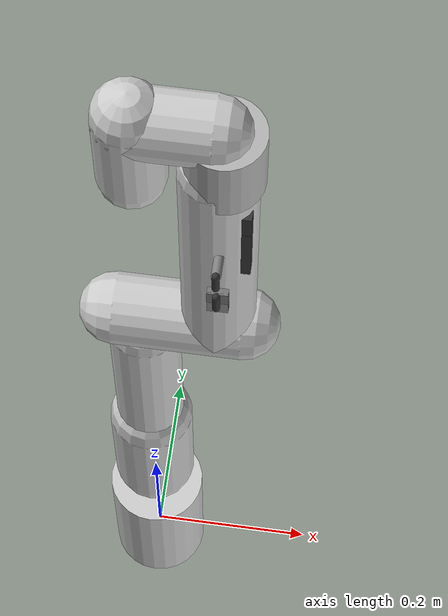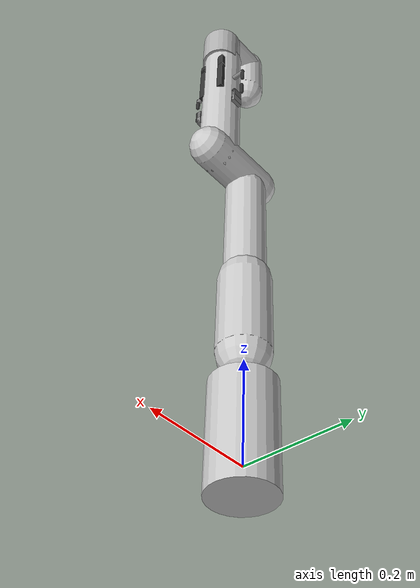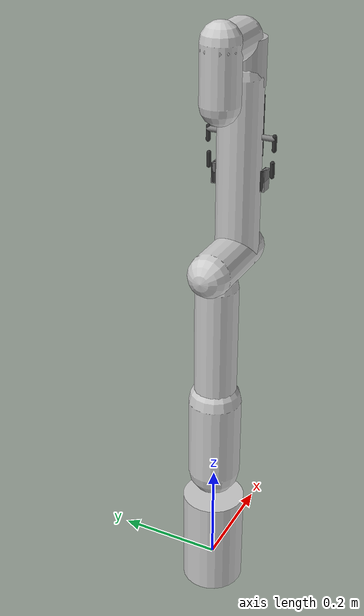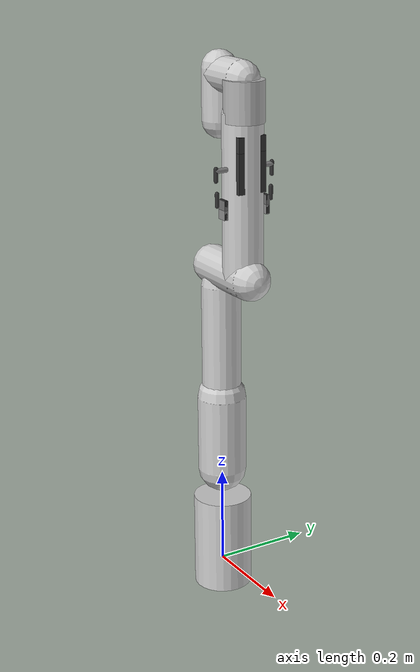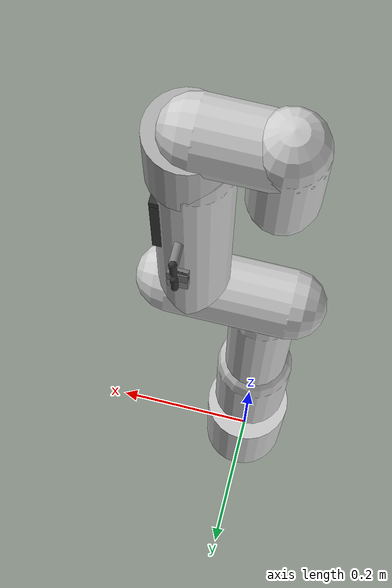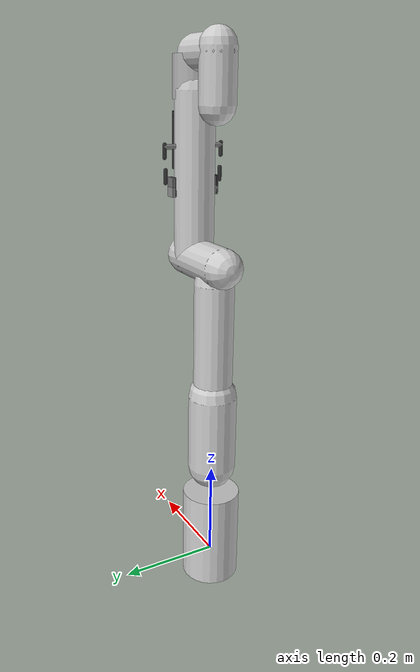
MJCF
<mujoco model="panda_2f85_nomesh">
  <compiler angle="radian" autolimits="true"/>

  <option integrator="implicitfast" cone="elliptic" impratio="10"/>

  <default>
    <default class="panda">
      <joint armature="0.1" damping="1" axis="0 0 1" range="-2.8973 2.8973"/>
      <general dyntype="none" biastype="affine" ctrlrange="-2.8973 2.8973" forcerange="-87 87"/>
    </default>
    <default class="2f85">
      <general biastype="affine"/>
      <joint axis="1 0 0"/>
      <default class="driver">
        <joint range="0 0.8" armature="0.005" damping="0.1" solimplimit="0.95 0.99 0.001" solreflimit="0.005 1"/>
      </default>
      <default class="follower">
        <joint range="-0.872664 0.872664" armature="0.001" pos="0 -0.018 0.0065" solimplimit="0.95 0.99 0.001" solreflimit="0.005 1"/>
      </default>
      <default class="spring_link">
        <joint range="-0.29670597283 0.8" armature="0.001" stiffness="0.05" springref="2.62" damping="0.00125"/>
      </default>
      <default class="coupler">
        <joint range="-1.57 0" armature="0.001" solimplimit="0.95 0.99 0.001" solreflimit="0.005 1"/>
      </default>
      <default class="pad_box1">
        <geom mass="0" type="box" pos="0 -0.0026 0.028125" size="0.011 0.004 0.009375" friction="0.7"
          solimp="0.95 0.99 0.001" solref="0.004 1" priority="1" rgba="0.55 0.55 0.55 1"/>
      </default>
      <default class="pad_box2">
        <geom mass="0" type="box" pos="0 -0.0026 0.009375" size="0.011 0.004 0.009375" friction="0.6"
          solimp="0.95 0.99 0.001" solref="0.004 1" priority="1" rgba="0.45 0.45 0.45 1"/>
      </default>
    </default>
  </default>

  <worldbody>
    <light name="top" pos="0 0 2" mode="trackcom"/>
    <body name="link0" childclass="panda">
      <inertial mass="0.629769" pos="-0.041018 -0.00014 0.049974"
        fullinertia="0.00315 0.00388 0.004285 8.2904e-7 0.00015 8.2299e-6"/>
      <geom type="cylinder" size="0.06 0.1" pos="0 0 0.05" rgba="0.8 0.8 0.8 1"/>
      <body name="link1" pos="0 0 0.333">
        <inertial mass="4.970684" pos="0.003875 0.002081 -0.04762"
          fullinertia="0.70337 0.70661 0.0091170 -0.00013900 0.0067720 0.019169"/>
        <joint name="joint1"/>
        <geom type="capsule" size="0.05 0.08" pos="0 0 -0.04" rgba="0.8 0.8 0.8 1"/>
        <body name="link2" quat="1 -1 0 0">
          <inertial mass="0.646926" pos="-0.003141 -0.02872 0.003495"
            fullinertia="0.0079620 2.8110e-2 2.5995e-2 -3.925e-3 1.0254e-2 7.04e-4"/>
          <joint name="joint2" range="-1.7628 1.7628"/>
          <geom type="capsule" size="0.04 0.14" pos="0 -0.14 0" quat="1 1 0 0" rgba="0.8 0.8 0.8 1"/>
          <body name="link3" pos="0 -0.316 0" quat="1 1 0 0">
            <joint name="joint3"/>
            <inertial mass="3.228604" pos="2.7518e-2 3.9252e-2 -6.6502e-2"
              fullinertia="3.7242e-2 3.6155e-2 1.083e-2 -4.761e-3 -1.1396e-2 -1.2805e-2"/>
            <geom type="capsule" size="0.04 0.07" pos="0.04 0 0" quat="1 0 1 0" rgba="0.8 0.8 0.8 1"/>
            <body name="link4" pos="0.0825 0 0" quat="1 1 0 0">
              <inertial mass="3.587895" pos="-5.317e-2 1.04419e-1 2.7454e-2"
                fullinertia="2.5853e-2 1.9552e-2 2.8323e-2 7.796e-3 -1.332e-3 8.641e-3"/>
              <joint name="joint4" range="-3.0718 -0.0698"/>
              <geom type="capsule" size="0.04 0.16" pos="0 0.16 0" quat="1 1 0 0" rgba="0.8 0.8 0.8 1"/>
              <body name="link5" pos="-0.0825 0.384 0" quat="1 -1 0 0">
                <inertial mass="1.225946" pos="-1.1953e-2 4.1065e-2 -3.8437e-2"
                  fullinertia="3.5549e-2 2.9474e-2 8.627e-3 -2.117e-3 -4.037e-3 2.29e-4"/>
                <joint name="joint5"/>
                <geom type="capsule" size="0.035 0.05" pos="0 0 -0.04" rgba="0.8 0.8 0.8 1"/>
                <body name="link6" quat="1 1 0 0">
                  <inertial mass="1.666555" pos="6.0149e-2 -1.4117e-2 -1.0517e-2"
                    fullinertia="1.964e-3 4.354e-3 5.433e-3 1.09e-4 -1.158e-3 3.41e-4"/>
                  <joint name="joint6" range="-0.0175 3.7525"/>
                  <geom type="capsule" size="0.035 0.04" pos="0.04 0 0" quat="1 0 1 0" rgba="0.8 0.8 0.8 1"/>
                  <body name="link7" pos="0.088 0 0" quat="1 1 0 0">
                    <inertial mass="7.35522e-01" pos="1.0517e-2 -4.252e-3 6.1597e-2"
                      fullinertia="1.2516e-2 1.0027e-2 4.815e-3 -4.28e-4 -1.196e-3 -7.41e-4"/>
                    <joint name="joint7"/>
                    <geom type="cylinder" size="0.04 0.04" pos="0 0 0.04" rgba="0.7 0.7 0.7 1"/>
                    <!-- Robotiq 2F-85 -->
                    <body name="base_mount" pos="0 0 0.107" childclass="2f85">
                      <geom type="box" size="0.03 0.03 0.015" pos="0 0 0.01" rgba="0.2 0.2 0.2 1"/>
                      <body name="base" pos="0 0 0.0038" quat="0 0 0 1">
                        <inertial mass="0.777441" pos="0 -2.70394e-05 0.0354675" quat="1 -0.00152849 0 0"
                          diaginertia="0.000260285 0.000225381 0.000152708"/>
                        <geom type="box" size="0.03 0.03 0.05" pos="0 0 0.05" rgba="0.2 0.2 0.2 1"/>
                        <body name="gripper_center" pos="0 0 0.145">
                          <site name="pinch" pos="0 0 0" type="sphere" group="5" rgba="0.9 0.9 0.9 1" size="0.005"/>
                        </body>
                        <!-- Right 4-bar linkage -->
                        <body name="right_driver" pos="0 0.0306011 0.054904">
                          <inertial mass="0.00899563" pos="2.96931e-12 0.0177547 0.00107314" quat="0.681301 0.732003 0 0"
                            diaginertia="1.72352e-06 1.60906e-06 3.22006e-07"/>
                          <joint name="right_driver_joint" class="driver"/>
                          <geom type="capsule" size="0.005 0.015" pos="0 0.015 0" quat="1 1 0 0" rgba="0.5 0.5 0.5 1"/>
                          <body name="right_coupler" pos="0 0.0315 -0.0041">
                            <inertial mass="0.0140974" pos="0 0.00301209 0.0232175" quat="0.705636 -0.0455904 0.0455904 0.705636"
                              diaginertia="4.16206e-06 3.52216e-06 8.88131e-07"/>
                            <joint name="right_coupler_joint" class="coupler"/>
                            <geom type="capsule" size="0.004 0.012" pos="0 0 0.012" rgba="0.2 0.2 0.2 1"/>
                          </body>
                        </body>
                        <body name="right_spring_link" pos="0 0.0132 0.0609">
                          <inertial mass="0.0221642" pos="-8.65005e-09 0.0181624 0.0212658" quat="0.663403 -0.244737 0.244737 0.663403"
                            diaginertia="8.96853e-06 6.71733e-06 2.63931e-06"/>
                          <joint name="right_spring_link_joint" class="spring_link"/>
                          <geom type="capsule" size="0.004 0.02" pos="0 0.018 0.02" rgba="0.2 0.2 0.2 1"/>
                          <body name="right_follower" pos="0 0.055 0.0375">
                            <inertial mass="0.0125222" pos="0 -0.011046 0.0124786" quat="1 0.1664 0 0"
                              diaginertia="2.67415e-06 2.4559e-06 6.02031e-07"/>
                            <joint name="right_follower_joint" class="follower"/>
                            <geom type="capsule" size="0.004 0.012" pos="0 -0.008 0.012" rgba="0.2 0.2 0.2 1"/>
                            <body name="right_pad" pos="0 -0.0189 0.01352">
                              <geom class="pad_box1" name="right_pad1"/>
                              <geom class="pad_box2" name="right_pad2"/>
                              <inertial mass="0.0035" pos="0 -0.0025 0.0185" quat="0.707107 0 0 0.707107"
                                diaginertia="4.73958e-07 3.64583e-07 1.23958e-07"/>
                              <body name="right_silicone_pad">
                                <geom type="box" size="0.011 0.003 0.018" pos="0 -0.003 0.018" rgba="0.2 0.2 0.2 1"/>
                              </body>
                            </body>
                          </body>
                        </body>
                        <!-- Left 4-bar linkage -->
                        <body name="left_driver" pos="0 -0.0306011 0.054904" quat="0 0 0 1">
                          <inertial mass="0.00899563" pos="0 0.0177547 0.00107314" quat="0.681301 0.732003 0 0"
                            diaginertia="1.72352e-06 1.60906e-06 3.22006e-07"/>
                          <joint name="left_driver_joint" class="driver"/>
                          <geom type="capsule" size="0.005 0.015" pos="0 0.015 0" quat="1 1 0 0" rgba="0.5 0.5 0.5 1"/>
                          <body name="left_coupler" pos="0 0.0315 -0.0041">
                            <inertial mass="0.0140974" pos="0 0.00301209 0.0232175" quat="0.705636 -0.0455904 0.0455904 0.705636"
                              diaginertia="4.16206e-06 3.52216e-06 8.88131e-07"/>
                            <joint name="left_coupler_joint" class="coupler"/>
                            <geom type="capsule" size="0.004 0.012" pos="0 0 0.012" rgba="0.2 0.2 0.2 1"/>
                          </body>
                        </body>
                        <body name="left_spring_link" pos="0 -0.0132 0.0609" quat="0 0 0 1">
                          <inertial mass="0.0221642" pos="-8.65005e-09 0.0181624 0.0212658" quat="0.663403 -0.244737 0.244737 0.663403"
                            diaginertia="8.96853e-06 6.71733e-06 2.63931e-06"/>
                          <joint name="left_spring_link_joint" class="spring_link"/>
                          <geom type="capsule" size="0.004 0.02" pos="0 0.018 0.02" rgba="0.2 0.2 0.2 1"/>
                          <body name="left_follower" pos="0 0.055 0.0375">
                            <inertial mass="0.0125222" pos="0 -0.011046 0.0124786" quat="1 0.1664 0 0"
                              diaginertia="2.67415e-06 2.4559e-06 6.02031e-07"/>
                            <joint name="left_follower_joint" class="follower"/>
                            <geom type="capsule" size="0.004 0.012" pos="0 -0.008 0.012" rgba="0.2 0.2 0.2 1"/>
                            <body name="left_pad" pos="0 -0.0189 0.01352">
                              <geom class="pad_box1" name="left_pad1"/>
                              <geom class="pad_box2" name="left_pad2"/>
                              <inertial mass="0.0035" pos="0 -0.0025 0.0185" quat="1 0 0 1"
                                diaginertia="4.73958e-07 3.64583e-07 1.23958e-07"/>
                              <body name="left_silicone_pad">
                                <geom type="box" size="0.011 0.003 0.018" pos="0 -0.003 0.018" rgba="0.2 0.2 0.2 1"/>
                              </body>
                            </body>
                          </body>
                        </body>
                      </body>
                    </body>
                  </body>
                </body>
              </body>
            </body>
          </body>
        </body>
      </body>
    </body>
  </worldbody>

  <tendon>
    <fixed name="split">
      <joint joint="right_driver_joint" coef="0.5"/>
      <joint joint="left_driver_joint" coef="0.5"/>
    </fixed>
  </tendon>

  <equality>
    <connect anchor="0 0 0" body1="right_follower" body2="right_coupler" solimp="0.95 0.99 0.001" solref="0.005 1"/>
    <connect anchor="0 0 0" body1="left_follower" body2="left_coupler" solimp="0.95 0.99 0.001" solref="0.005 1"/>
    <joint joint1="right_driver_joint" joint2="left_driver_joint" polycoef="0 1 0 0 0" solimp="0.95 0.99 0.001"
      solref="0.005 1"/>
  </equality>

  <actuator>
    <general class="panda" name="actuator1" joint="joint1" gainprm="4500" biasprm="0 -4500 -450"/>
    <general class="panda" name="actuator2" joint="joint2" gainprm="4500" biasprm="0 -4500 -450"
      ctrlrange="-1.7628 1.7628"/>
    <general class="panda" name="actuator3" joint="joint3" gainprm="3500" biasprm="0 -3500 -350"/>
    <general class="panda" name="actuator4" joint="joint4" gainprm="3500" biasprm="0 -3500 -350"
      ctrlrange="-3.0718 -0.0698"/>
    <general class="panda" name="actuator5" joint="joint5" gainprm="2000" biasprm="0 -2000 -200" forcerange="-12 12"/>
    <general class="panda" name="actuator6" joint="joint6" gainprm="2000" biasprm="0 -2000 -200" forcerange="-12 12"
      ctrlrange="-0.0175 3.7525"/>
    <general class="panda" name="actuator7" joint="joint7" gainprm="2000" biasprm="0 -2000 -200" forcerange="-12 12"/>
    <general class="2f85" name="fingers_actuator" tendon="split" forcerange="-5 5" ctrlrange="0 255"
      gainprm="0.3137255 0 0" biasprm="0 -100 -10"/>
  </actuator>

  <keyframe>
    <key name="home" qpos="0 0 0 -1.57079 0 1.57079 -0.7853 0 0 0 0 0 0 0 0"
      ctrl="0 0 0 -1.57079 0 1.57079 -0.7853 0"/>
  </keyframe>

  <contact>
    <exclude body1="link0" body2="link1"/>
    <exclude body1="base" body2="left_driver"/>
    <exclude body1="base" body2="right_driver"/>
    <exclude body1="base" body2="left_spring_link"/>
    <exclude body1="base" body2="right_spring_link"/>
    <exclude body1="right_coupler" body2="right_follower"/>
    <exclude body1="left_coupler" body2="left_follower"/>
  </contact>
</mujoco>
